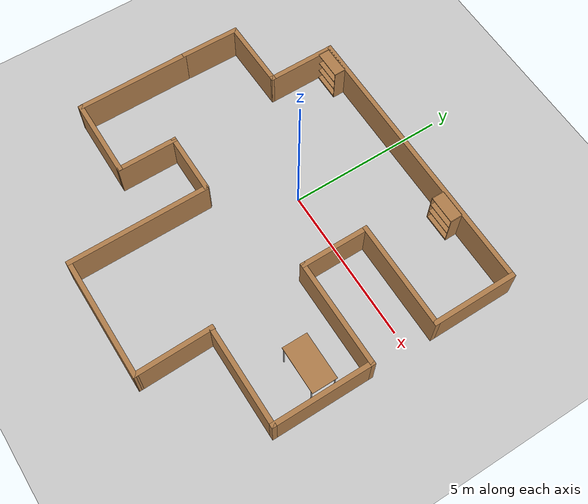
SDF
<sdf version="1.6">
 <world name="default">
  <light name="sun" type="directional">
   <pose>0 0 10 0 -0 0</pose>
   <diffuse>0.8 0.8 0.8 1</diffuse>
   <specular>0.2 0.2 0.2 1</specular>
   <attenuation>
    <range>1000</range>
    <constant>0.9</constant>
    <linear>0.01</linear>
    <quadratic>0.001</quadratic>
   </attenuation>
   <direction>-0.5 0.1 -0.9</direction>
  </light>
  <model name="ground_plane">
   <static>1</static>
   <link name="link">
    <collision name="collision">
     <geometry><plane><normal>0 0 1</normal><size>100 100</size></plane></geometry>
     <surface>
      <contact><collide_bitmask>65535</collide_bitmask></contact>
      <friction><ode><mu>100</mu><mu2>50</mu2></ode></friction>
     </surface>
    </collision>
    <visual name="visual">
     <cast_shadows>0</cast_shadows>
     <geometry><plane><normal>0 0 1</normal><size>100 100</size></plane></geometry>
     <material>
      <script><uri>file://media/materials/scripts/gazebo.material</uri><name>Gazebo/Grey</name></script>
     </material>
    </visual>
   </link>
  </model>
  <gravity>0 0 -9.8</gravity>
  <magnetic_field>6e-06 2.3e-05 -4.2e-05</magnetic_field>
  <atmosphere type="adiabatic"/>
  <physics name="default_physics" default="0" type="ode">
   <max_step_size>0.001</max_step_size>
   <real_time_factor>1</real_time_factor>
   <real_time_update_rate>1000</real_time_update_rate>
  </physics>
  <scene><ambient>0.4 0.4 0.4 1</ambient><background>0.7 0.7 0.7 1</background><shadows>1</shadows></scene>
  <audio><device>default</device></audio>
  <spherical_coordinates>
   <surface_model>EARTH_WGS84</surface_model>
   <latitude_deg>0</latitude_deg>
   <longitude_deg>0</longitude_deg>
   <elevation>0</elevation>
   <heading_deg>0</heading_deg>
  </spherical_coordinates>
  <model name="smallworld">
   <pose>-0.001465 -1.70265 0 0 -0 0</pose>
   <link name="Wall_0">
    <collision name="Wall_0_Collision">
     <geometry><box><size>1.97226 0.15 1.2</size></box></geometry>
     <pose>0 0 0.6 0 -0 0</pose>
    </collision>
    <visual name="Wall_0_Visual">
     <pose>0 0 0.6 0 -0 0</pose>
     <geometry><box><size>1.97226 0.15 1.2</size></box></geometry>
     <material>
      <script><uri>file://media/materials/scripts/gazebo.material</uri><name>Gazebo/Wood</name></script>
      <ambient>1 1 1 1</ambient>
     </material>
     <meta><layer>0</layer></meta>
    </visual>
    <pose>-3.14853 -1.56622 0 0 -0 -1.5708</pose>
   </link>
   <link name="Wall_1">
    <collision name="Wall_1_Collision">
     <geometry><box><size>2.62683 0.15 1.2</size></box></geometry>
     <pose>0 0 0.6 0 -0 0</pose>
    </collision>
    <visual name="Wall_1_Visual">
     <pose>0 0 0.6 0 -0 0</pose>
     <geometry><box><size>2.62683 0.15 1.2</size></box></geometry>
     <material>
      <script><uri>file://media/materials/scripts/gazebo.material</uri><name>Gazebo/Wood</name></script>
      <ambient>1 1 1 1</ambient>
     </material>
     <meta><layer>0</layer></meta>
    </visual>
    <pose>-4.39691 -2.46693 0 0 -0 3.13318</pose>
   </link>
   <link name="Wall_10">
    <collision name="Wall_10_Collision">
     <geometry><box><size>2.25 0.15 1.2</size></box></geometry>
     <pose>0 0 0.6 0 -0 0</pose>
    </collision>
    <visual name="Wall_10_Visual">
     <pose>0 0 0.6 0 -0 0</pose>
     <geometry><box><size>2.25 0.15 1.2</size></box></geometry>
     <material>
      <script><uri>file://media/materials/scripts/gazebo.material</uri><name>Gazebo/Wood</name></script>
      <ambient>1 1 1 1</ambient>
     </material>
     <meta><layer>0</layer></meta>
    </visual>
    <pose>2.30146 1.43265 0 0 -0 -1.5708</pose>
   </link>
   <link name="Wall_11">
    <collision name="Wall_11_Collision">
     <geometry><box><size>3.5 0.15 1.2</size></box></geometry>
     <pose>0 0 0.6 0 -0 0</pose>
    </collision>
    <visual name="Wall_11_Visual">
     <pose>0 0 0.6 0 -0 0</pose>
     <geometry><box><size>3.5 0.15 1.2</size></box></geometry>
     <material>
      <script><uri>file://media/materials/scripts/gazebo.material</uri><name>Gazebo/Wood</name></script>
      <ambient>1 1 1 1</ambient>
     </material>
     <meta><layer>0</layer></meta>
    </visual>
    <pose>3.97647 0.382648 0 0 -0 0</pose>
   </link>
   <link name="Wall_12">
    <collision name="Wall_12_Collision">
     <geometry><box><size>3.25 0.15 1.2</size></box></geometry>
     <pose>0 0 0.6 0 -0 0</pose>
    </collision>
    <visual name="Wall_12_Visual">
     <pose>0 0 0.6 0 -0 0</pose>
     <geometry><box><size>3.25 0.15 1.2</size></box></geometry>
     <material>
      <script><uri>file://media/materials/scripts/gazebo.material</uri><name>Gazebo/Wood</name></script>
      <ambient>1 1 1 1</ambient>
     </material>
     <meta><layer>0</layer></meta>
    </visual>
    <pose>5.65146 -1.16735 0 0 -0 -1.5708</pose>
   </link>
   <link name="Wall_13">
    <collision name="Wall_13_Collision">
     <geometry><box><size>3.28045 0.15 1.2</size></box></geometry>
     <pose>0 0 0.6 0 -0 0</pose>
    </collision>
    <visual name="Wall_13_Visual">
     <pose>0 0 0.6 0 -0 0</pose>
     <geometry><box><size>3.28045 0.15 1.2</size></box></geometry>
     <material>
      <script><uri>file://media/materials/scripts/gazebo.material</uri><name>Gazebo/Wood</name></script>
      <ambient>1 1 1 1</ambient>
     </material>
     <meta><layer>0</layer></meta>
    </visual>
    <pose>4.08626 -2.71735 0 0 -0 -3.14159</pose>
   </link>
   <link name="Wall_14">
    <collision name="Wall_14_Collision">
     <geometry><box><size>2.51565 0.15 1.2</size></box></geometry>
     <pose>0 0 0.6 0 -0 0</pose>
    </collision>
    <visual name="Wall_14_Visual">
     <pose>0 0 0.6 0 -0 0</pose>
     <geometry><box><size>2.51565 0.15 1.2</size></box></geometry>
     <material>
      <script><uri>file://media/materials/scripts/gazebo.material</uri><name>Gazebo/Wood</name></script>
      <ambient>1 1 1 1</ambient>
     </material>
     <meta><layer>0</layer></meta>
    </visual>
    <pose>2.54386 -3.88475 0 0 -0 -1.55151</pose>
   </link>
   <link name="Wall_15">
    <collision name="Wall_15_Collision">
     <geometry><box><size>3.9544 0.15 1.2</size></box></geometry>
     <pose>0 0 0.6 0 -0 0</pose>
    </collision>
    <visual name="Wall_15_Visual">
     <pose>0 0 0.6 0 -0 0</pose>
     <geometry><box><size>3.9544 0.15 1.2</size></box></geometry>
     <material>
      <script><uri>file://media/materials/scripts/gazebo.material</uri><name>Gazebo/Wood</name></script>
      <ambient>1 1 1 1</ambient>
     </material>
     <meta><layer>0</layer></meta>
    </visual>
    <pose>0.664486 -5.08256 0 0 -0 3.14159</pose>
   </link>
   <link name="Wall_16">
    <collision name="Wall_16_Collision">
     <geometry><box><size>4.53701 0.15 1.2</size></box></geometry>
     <pose>0 0 0.6 0 -0 0</pose>
    </collision>
    <visual name="Wall_16_Visual">
     <pose>0 0 0.6 0 -0 0</pose>
     <geometry><box><size>4.53701 0.15 1.2</size></box></geometry>
     <material>
      <script><uri>file://media/materials/scripts/gazebo.material</uri><name>Gazebo/Wood</name></script>
      <ambient>1 1 1 1</ambient>
     </material>
     <meta><layer>0</layer></meta>
    </visual>
    <pose>-1.25549 -2.88906 0 0 -0 1.57197</pose>
   </link>
   <link name="Wall_17">
    <collision name="Wall_17_Collision">
     <geometry><box><size>2 0.15 1.2</size></box></geometry>
     <pose>0 0 0.6 0 -0 0</pose>
    </collision>
    <visual name="Wall_17_Visual">
     <pose>0 0 0.6 0 -0 0</pose>
     <geometry><box><size>2 0.15 1.2</size></box></geometry>
     <material>
      <script><uri>file://media/materials/scripts/gazebo.material</uri><name>Gazebo/Wood</name></script>
      <ambient>1 1 1 1</ambient>
     </material>
     <meta><layer>0</layer></meta>
    </visual>
    <pose>-2.22354 -0.655096 0 0 -0 3.14159</pose>
   </link>
   <link name="Wall_19">
    <collision name="Wall_19_Collision">
     <geometry><box><size>1.94932 0.15 1.2</size></box></geometry>
     <pose>0 0 0.6 0 -0 0</pose>
    </collision>
    <visual name="Wall_19_Visual">
     <pose>0 0 0.6 0 -0 0</pose>
     <geometry><box><size>1.94932 0.15 1.2</size></box></geometry>
     <material>
      <script><uri>file://media/materials/scripts/gazebo.material</uri><name>Gazebo/Wood</name></script>
      <ambient>1 1 1 1</ambient>
     </material>
     <meta><layer>0</layer></meta>
    </visual>
    <pose>-5.63851 2.04307 0 0 -0 1.55748</pose>
   </link>
   <link name="Wall_2">
    <collision name="Wall_2_Collision">
     <geometry><box><size>3.75 0.15 1.2</size></box></geometry>
     <pose>0 0 0.6 0 -0 0</pose>
    </collision>
    <visual name="Wall_2_Visual">
     <pose>0 0 0.6 0 -0 0</pose>
     <geometry><box><size>3.75 0.15 1.2</size></box></geometry>
     <material>
      <script><uri>file://media/materials/scripts/gazebo.material</uri><name>Gazebo/Wood</name></script>
      <ambient>1 1 1 1</ambient>
     </material>
     <meta><layer>0</layer></meta>
    </visual>
    <pose>-5.65049 -0.656516 0 0 -0 1.5708</pose>
   </link>
   <link name="Wall_20">
    <collision name="Wall_20_Collision">
     <geometry><box><size>2.32858 0.15 1.2</size></box></geometry>
     <pose>0 0 0.6 0 -0 0</pose>
    </collision>
    <visual name="Wall_20_Visual">
     <pose>0 0 0.6 0 -0 0</pose>
     <geometry><box><size>2.32858 0.15 1.2</size></box></geometry>
     <material>
      <script><uri>file://media/materials/scripts/gazebo.material</uri><name>Gazebo/Wood</name></script>
      <ambient>1 1 1 1</ambient>
     </material>
     <meta><layer>0</layer></meta>
    </visual>
    <pose>-4.53754 2.96265 0 0 -0 0.018363</pose>
   </link>
   <link name="Wall_6">
    <collision name="Wall_6_Collision">
     <geometry><box><size>2.25 0.15 1.2</size></box></geometry>
     <pose>0 0 0.6 0 -0 0</pose>
    </collision>
    <visual name="Wall_6_Visual">
     <pose>0 0 0.6 0 -0 0</pose>
     <geometry><box><size>2.25 0.15 1.2</size></box></geometry>
     <material>
      <script><uri>file://media/materials/scripts/gazebo.material</uri><name>Gazebo/Wood</name></script>
      <ambient>1 1 1 1</ambient>
     </material>
     <meta><layer>0</layer></meta>
    </visual>
    <pose>-3.44854 4.03265 0 0 -0 1.5708</pose>
   </link>
   <link name="Wall_7">
    <collision name="Wall_7_Collision">
     <geometry><box><size>9.25 0.15 1.2</size></box></geometry>
     <pose>0 0 0.6 0 -0 0</pose>
    </collision>
    <visual name="Wall_7_Visual">
     <pose>0 0 0.6 0 -0 0</pose>
     <geometry><box><size>9.25 0.15 1.2</size></box></geometry>
     <material>
      <script><uri>file://media/materials/scripts/gazebo.material</uri><name>Gazebo/Wood</name></script>
      <ambient>1 1 1 1</ambient>
     </material>
     <meta><layer>0</layer></meta>
    </visual>
    <pose>1.10146 5.08265 0 0 -0 0</pose>
   </link>
   <link name="Wall_8">
    <collision name="Wall_8_Collision">
     <geometry><box><size>2.75 0.15 1.2</size></box></geometry>
     <pose>0 0 0.6 0 -0 0</pose>
    </collision>
    <visual name="Wall_8_Visual">
     <pose>0 0 0.6 0 -0 0</pose>
     <geometry><box><size>2.75 0.15 1.2</size></box></geometry>
     <material>
      <script><uri>file://media/materials/scripts/gazebo.material</uri><name>Gazebo/Wood</name></script>
      <ambient>1 1 1 1</ambient>
     </material>
     <meta><layer>0</layer></meta>
    </visual>
    <pose>5.65146 3.78265 0 0 -0 -1.5708</pose>
   </link>
   <link name="Wall_9">
    <collision name="Wall_9_Collision">
     <geometry><box><size>3.5 0.15 1.2</size></box></geometry>
     <pose>0 0 0.6 0 -0 0</pose>
    </collision>
    <visual name="Wall_9_Visual">
     <pose>0 0 0.6 0 -0 0</pose>
     <geometry><box><size>3.5 0.15 1.2</size></box></geometry>
     <material>
      <script><uri>file://media/materials/scripts/gazebo.material</uri><name>Gazebo/Wood</name></script>
      <ambient>1 1 1 1</ambient>
     </material>
     <meta><layer>0</layer></meta>
    </visual>
    <pose>3.97647 2.48265 0 0 -0 3.14159</pose>
   </link>
   <static>1</static>
  </model>
  <model name="table">
   <static>1</static>
   <link name="link">
    <collision name="surface">
     <pose>0 0 1 0 -0 0</pose>
     <geometry><box><size>1.5 0.8 0.03</size></box></geometry>
     <surface><friction><ode><mu>0.6</mu><mu2>0.6</mu2></ode></friction></surface>
    </collision>
    <visual name="visual1">
     <pose>0 0 1 0 -0 0</pose>
     <geometry><box><size>1.5 0.8 0.03</size></box></geometry>
     <material>
      <script><uri>file://media/materials/scripts/gazebo.material</uri><name>Gazebo/Wood</name></script>
     </material>
    </visual>
    <collision name="front_left_leg">
     <pose>0.68 0.38 0.5 0 -0 0</pose>
     <geometry><cylinder><radius>0.02</radius><length>1</length></cylinder></geometry>
    </collision>
    <visual name="front_left_leg">
     <pose>0.68 0.38 0.5 0 -0 0</pose>
     <geometry><cylinder><radius>0.02</radius><length>1</length></cylinder></geometry>
     <material>
      <script><uri>file://media/materials/scripts/gazebo.material</uri><name>Gazebo/Grey</name></script>
     </material>
    </visual>
    <collision name="front_right_leg">
     <pose>0.68 -0.38 0.5 0 -0 0</pose>
     <geometry><cylinder><radius>0.02</radius><length>1</length></cylinder></geometry>
    </collision>
    <visual name="front_right_leg">
     <pose>0.68 -0.38 0.5 0 -0 0</pose>
     <geometry><cylinder><radius>0.02</radius><length>1</length></cylinder></geometry>
     <material>
      <script><uri>file://media/materials/scripts/gazebo.material</uri><name>Gazebo/Grey</name></script>
     </material>
    </visual>
    <collision name="back_right_leg">
     <pose>-0.68 -0.38 0.5 0 -0 0</pose>
     <geometry><cylinder><radius>0.02</radius><length>1</length></cylinder></geometry>
    </collision>
    <visual name="back_right_leg">
     <pose>-0.68 -0.38 0.5 0 -0 0</pose>
     <geometry><cylinder><radius>0.02</radius><length>1</length></cylinder></geometry>
     <material>
      <script><uri>file://media/materials/scripts/gazebo.material</uri><name>Gazebo/Grey</name></script>
     </material>
    </visual>
    <collision name="back_left_leg">
     <pose>-0.68 0.38 0.5 0 -0 0</pose>
     <geometry><cylinder><radius>0.02</radius><length>1</length></cylinder></geometry>
    </collision>
    <visual name="back_left_leg">
     <pose>-0.68 0.38 0.5 0 -0 0</pose>
     <geometry><cylinder><radius>0.02</radius><length>1</length></cylinder></geometry>
     <material>
      <script><uri>file://media/materials/scripts/gazebo.material</uri><name>Gazebo/Grey</name></script>
     </material>
    </visual>
   </link>
   <pose>4.71187 -2.68288 0 0 -0 0</pose>
  </model>
  <model name="bookshelf">
   <static>1</static>
   <link name="link">
    <inertial><mass>1</mass></inertial>
    <collision name="back">
     <pose>0 0.005 0.6 0 -0 0</pose>
     <geometry><box><size>0.9 0.01 1.2</size></box></geometry>
    </collision>
    <visual name="visual1">
     <pose>0 0.005 0.6 0 -0 0</pose>
     <geometry><box><size>0.9 0.01 1.2</size></box></geometry>
     <material>
      <script><uri>file://media/materials/scripts/gazebo.material</uri><name>Gazebo/Wood</name></script>
     </material>
    </visual>
    <collision name="left_side">
     <pose>0.45 -0.195 0.6 0 -0 0</pose>
     <geometry><box><size>0.02 0.4 1.2</size></box></geometry>
    </collision>
    <visual name="visual2">
     <pose>0.45 -0.195 0.6 0 -0 0</pose>
     <geometry><box><size>0.02 0.4 1.2</size></box></geometry>
     <material>
      <script><uri>file://media/materials/scripts/gazebo.material</uri><name>Gazebo/Wood</name></script>
     </material>
    </visual>
    <collision name="right_side">
     <pose>-0.45 -0.195 0.6 0 -0 0</pose>
     <geometry><box><size>0.02 0.4 1.2</size></box></geometry>
    </collision>
    <visual name="visual3">
     <pose>-0.45 -0.195 0.6 0 -0 0</pose>
     <geometry><box><size>0.02 0.4 1.2</size></box></geometry>
     <material>
      <script><uri>file://media/materials/scripts/gazebo.material</uri><name>Gazebo/Wood</name></script>
     </material>
    </visual>
    <collision name="bottom">
     <pose>0 -0.195 0.03 0 -0 0</pose>
     <geometry><box><size>0.88 0.4 0.06</size></box></geometry>
    </collision>
    <visual name="visual4">
     <pose>0 -0.195 0.03 0 -0 0</pose>
     <geometry><box><size>0.88 0.4 0.06</size></box></geometry>
     <material>
      <script><uri>file://media/materials/scripts/gazebo.material</uri><name>Gazebo/Wood</name></script>
     </material>
    </visual>
    <collision name="top">
     <pose>0 -0.195 1.19 0 -0 0</pose>
     <geometry><box><size>0.88 0.4 0.02</size></box></geometry>
    </collision>
    <visual name="visual5">
     <pose>0 -0.195 1.19 0 -0 0</pose>
     <geometry><box><size>0.88 0.4 0.02</size></box></geometry>
     <material>
      <script><uri>file://media/materials/scripts/gazebo.material</uri><name>Gazebo/Wood</name></script>
     </material>
    </visual>
    <collision name="low_shelf">
     <pose>0 -0.195 0.43 0 -0 0</pose>
     <geometry><box><size>0.88 0.4 0.02</size></box></geometry>
    </collision>
    <visual name="visual6">
     <pose>0 -0.195 0.43 0 -0 0</pose>
     <geometry><box><size>0.88 0.4 0.02</size></box></geometry>
     <material>
      <script><uri>file://media/materials/scripts/gazebo.material</uri><name>Gazebo/Wood</name></script>
     </material>
    </visual>
    <collision name="high_shelf">
     <pose>0 -0.195 0.8 0 -0 0</pose>
     <geometry><box><size>0.88 0.4 0.02</size></box></geometry>
    </collision>
    <visual name="visual7">
     <pose>0 -0.195 0.8 0 -0 0</pose>
     <geometry><box><size>0.88 0.4 0.02</size></box></geometry>
     <material>
      <script><uri>file://media/materials/scripts/gazebo.material</uri><name>Gazebo/Wood</name></script>
     </material>
    </visual>
   </link>
   <pose>-2.95966 3.33596 0 0 -0 0</pose>
  </model>
  <model name="bookshelf_0">
   <static>1</static>
   <link name="link">
    <inertial><mass>1</mass></inertial>
    <collision name="back">
     <pose>0 0.005 0.6 0 -0 0</pose>
     <geometry><box><size>0.9 0.01 1.2</size></box></geometry>
    </collision>
    <visual name="visual1">
     <pose>0 0.005 0.6 0 -0 0</pose>
     <geometry><box><size>0.9 0.01 1.2</size></box></geometry>
     <material>
      <script><uri>file://media/materials/scripts/gazebo.material</uri><name>Gazebo/Wood</name></script>
     </material>
    </visual>
    <collision name="left_side">
     <pose>0.45 -0.195 0.6 0 -0 0</pose>
     <geometry><box><size>0.02 0.4 1.2</size></box></geometry>
    </collision>
    <visual name="visual2">
     <pose>0.45 -0.195 0.6 0 -0 0</pose>
     <geometry><box><size>0.02 0.4 1.2</size></box></geometry>
     <material>
      <script><uri>file://media/materials/scripts/gazebo.material</uri><name>Gazebo/Wood</name></script>
     </material>
    </visual>
    <collision name="right_side">
     <pose>-0.45 -0.195 0.6 0 -0 0</pose>
     <geometry><box><size>0.02 0.4 1.2</size></box></geometry>
    </collision>
    <visual name="visual3">
     <pose>-0.45 -0.195 0.6 0 -0 0</pose>
     <geometry><box><size>0.02 0.4 1.2</size></box></geometry>
     <material>
      <script><uri>file://media/materials/scripts/gazebo.material</uri><name>Gazebo/Wood</name></script>
     </material>
    </visual>
    <collision name="bottom">
     <pose>0 -0.195 0.03 0 -0 0</pose>
     <geometry><box><size>0.88 0.4 0.06</size></box></geometry>
    </collision>
    <visual name="visual4">
     <pose>0 -0.195 0.03 0 -0 0</pose>
     <geometry><box><size>0.88 0.4 0.06</size></box></geometry>
     <material>
      <script><uri>file://media/materials/scripts/gazebo.material</uri><name>Gazebo/Wood</name></script>
     </material>
    </visual>
    <collision name="top">
     <pose>0 -0.195 1.19 0 -0 0</pose>
     <geometry><box><size>0.88 0.4 0.02</size></box></geometry>
    </collision>
    <visual name="visual5">
     <pose>0 -0.195 1.19 0 -0 0</pose>
     <geometry><box><size>0.88 0.4 0.02</size></box></geometry>
     <material>
      <script><uri>file://media/materials/scripts/gazebo.material</uri><name>Gazebo/Wood</name></script>
     </material>
    </visual>
    <collision name="low_shelf">
     <pose>0 -0.195 0.43 0 -0 0</pose>
     <geometry><box><size>0.88 0.4 0.02</size></box></geometry>
    </collision>
    <visual name="visual6">
     <pose>0 -0.195 0.43 0 -0 0</pose>
     <geometry><box><size>0.88 0.4 0.02</size></box></geometry>
     <material>
      <script><uri>file://media/materials/scripts/gazebo.material</uri><name>Gazebo/Wood</name></script>
     </material>
    </visual>
    <collision name="high_shelf">
     <pose>0 -0.195 0.8 0 -0 0</pose>
     <geometry><box><size>0.88 0.4 0.02</size></box></geometry>
    </collision>
    <visual name="visual7">
     <pose>0 -0.195 0.8 0 -0 0</pose>
     <geometry><box><size>0.88 0.4 0.02</size></box></geometry>
     <material>
      <script><uri>file://media/materials/scripts/gazebo.material</uri><name>Gazebo/Wood</name></script>
     </material>
    </visual>
   </link>
   <pose>2.98105 3.32206 0 0 -0 0</pose>
  </model>
 </world>
</sdf>
